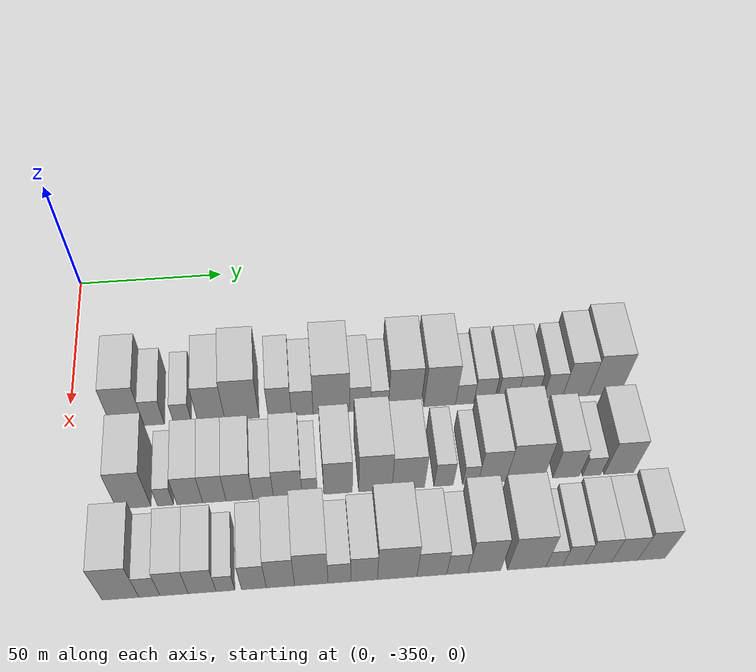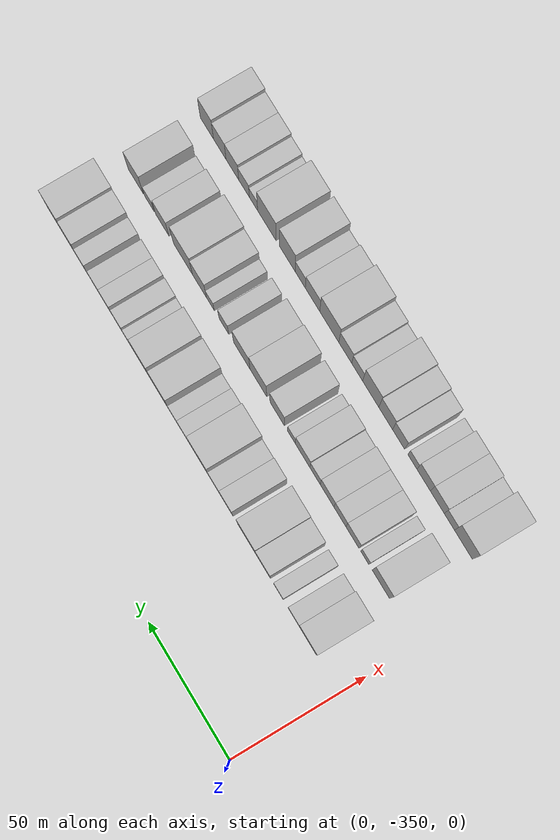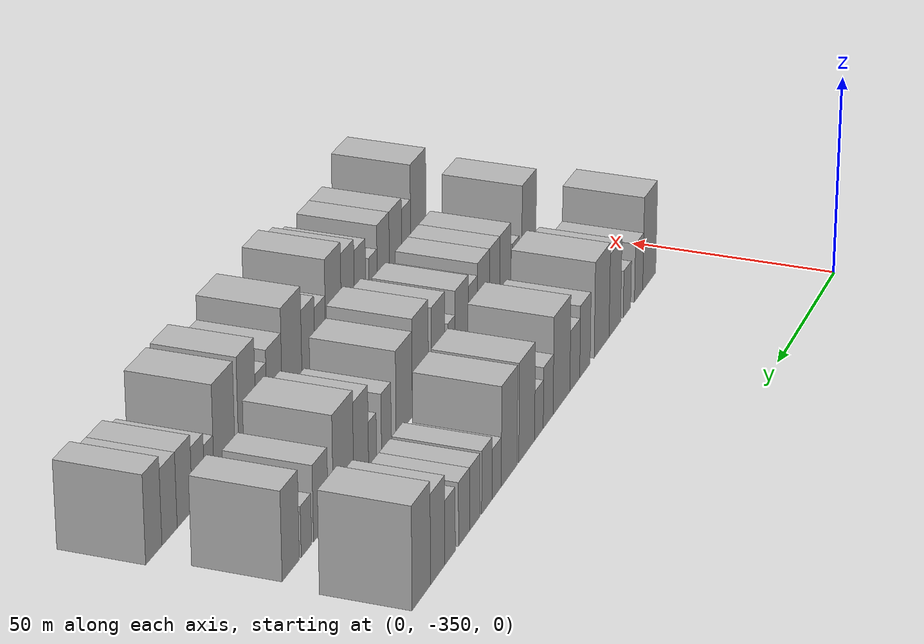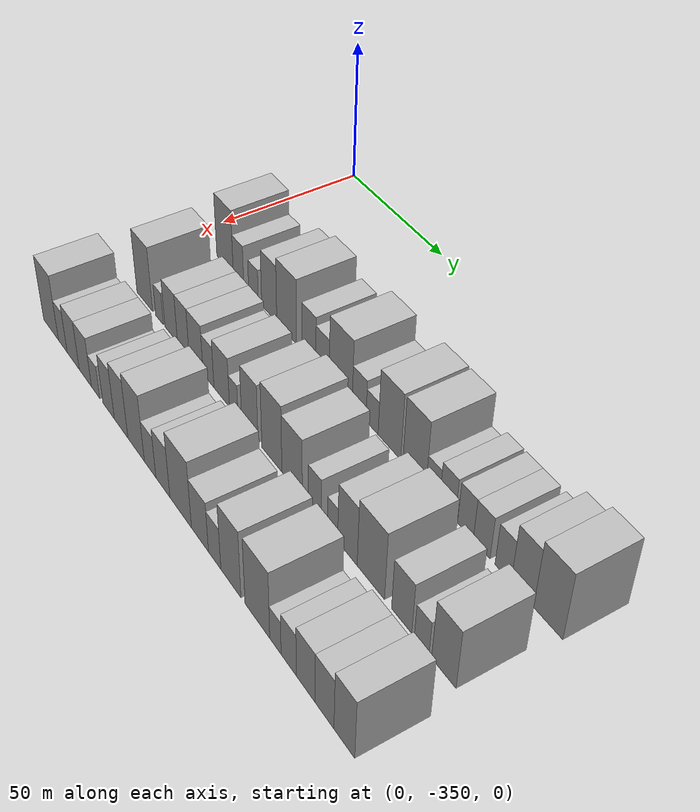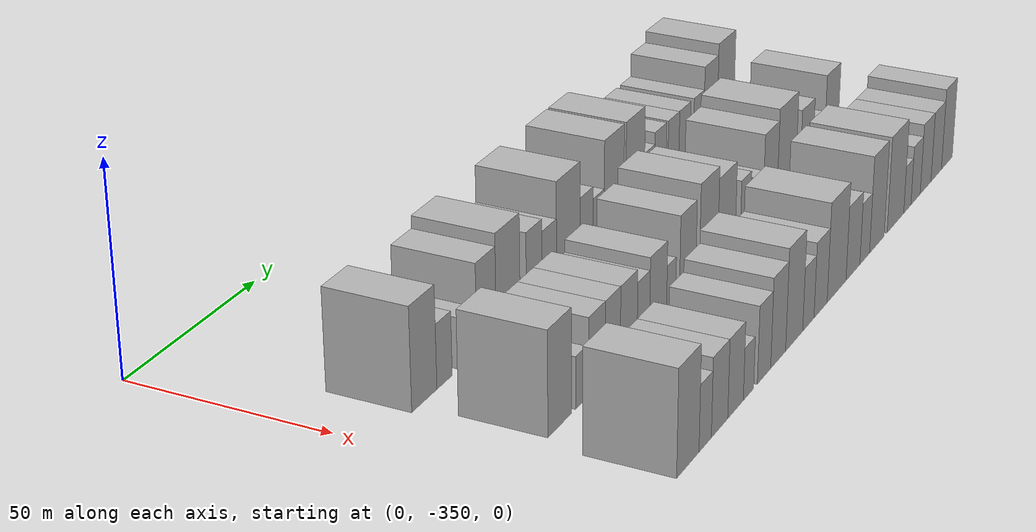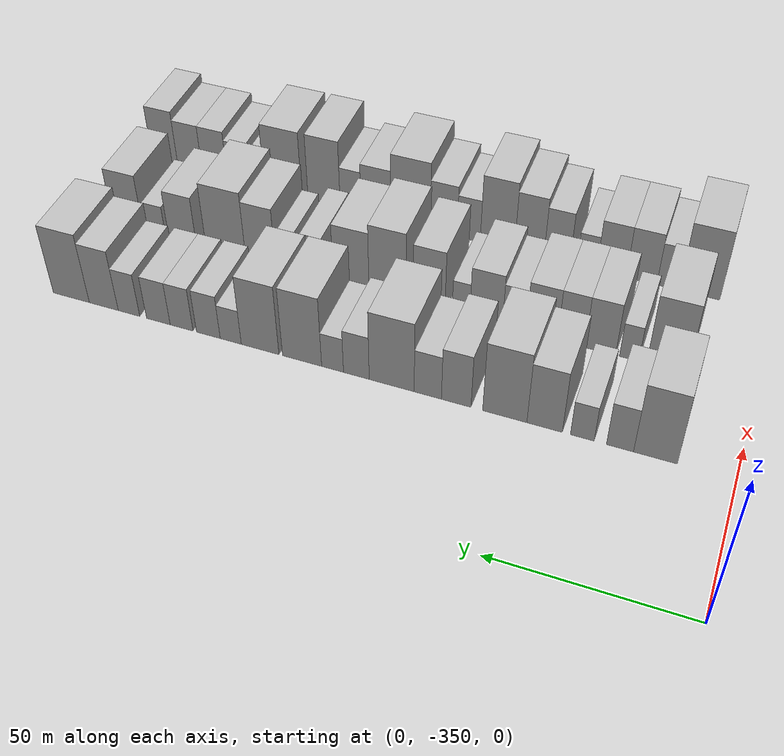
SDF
<sdf version="1.6">
 <world name="default">
  <model name="building_1">
   <static>1</static>
   <pose>50.0000 -330.7542 0 0.000000 0.000000 0.000000</pose>
   <link name="link">
    <pose>0 0 12.00 0 0 0</pose>
    <collision name="collision"><geometry><box><size>20.0000 10.4916 24.0000</size></box></geometry></collision>
    <visual name="visual">
     <cast_shadows>0</cast_shadows>
     <geometry><box><size>20.0000 10.4916 24.0000</size></box></geometry>
     <material>
      <script>
       <uri>model://HANNAS_wall/materials/scripts</uri>
       <uri>model://HANNAS_wall/materials/textures</uri>
       <name>vrc/HANNAS_wall</name>
      </script>
     </material>
    </visual>
   </link>
  </model>
  <model name="building_2">
   <static>1</static>
   <pose>50.0000 -322.2304 0 0.000000 0.000000 0.000000</pose>
   <link name="link">
    <pose>0 0 7.50 0 0 0</pose>
    <collision name="collision"><geometry><box><size>20.0000 6.5560 15.0000</size></box></geometry></collision>
    <visual name="visual">
     <cast_shadows>0</cast_shadows>
     <geometry><box><size>20.0000 6.5560 15.0000</size></box></geometry>
     <material>
      <script>
       <uri>model://HANNAS_wall/materials/scripts</uri>
       <uri>model://HANNAS_wall/materials/textures</uri>
       <name>vrc/HANNAS_wall</name>
      </script>
     </material>
    </visual>
   </link>
  </model>
  <model name="building_3">
   <static>1</static>
   <pose>50.0000 -313.0369 0 0.000000 0.000000 0.000000</pose>
   <link name="link">
    <pose>0 0 6.00 0 0 0</pose>
    <collision name="collision"><geometry><box><size>20.0000 5.8309 12.0000</size></box></geometry></collision>
    <visual name="visual">
     <cast_shadows>0</cast_shadows>
     <geometry><box><size>20.0000 5.8309 12.0000</size></box></geometry>
     <material>
      <script>
       <uri>model://HANNAS_wall/materials/scripts</uri>
       <uri>model://HANNAS_wall/materials/textures</uri>
       <name>vrc/HANNAS_wall</name>
      </script>
     </material>
    </visual>
   </link>
  </model>
  <model name="building_4">
   <static>1</static>
   <pose>50.0000 -303.6895 0 0.000000 0.000000 0.000000</pose>
   <link name="link">
    <pose>0 0 10.50 0 0 0</pose>
    <collision name="collision"><geometry><box><size>20.0000 8.8640 21.0000</size></box></geometry></collision>
    <visual name="visual">
     <cast_shadows>0</cast_shadows>
     <geometry><box><size>20.0000 8.8640 21.0000</size></box></geometry>
     <material>
      <script>
       <uri>model://HANNAS_wall/materials/scripts</uri>
       <uri>model://HANNAS_wall/materials/textures</uri>
       <name>vrc/HANNAS_wall</name>
      </script>
     </material>
    </visual>
   </link>
  </model>
  <model name="building_5">
   <static>1</static>
   <pose>50.0000 -293.6580 0 0.000000 0.000000 0.000000</pose>
   <link name="link">
    <pose>0 0 12.00 0 0 0</pose>
    <collision name="collision"><geometry><box><size>20.0000 11.1990 24.0000</size></box></geometry></collision>
    <visual name="visual">
     <cast_shadows>0</cast_shadows>
     <geometry><box><size>20.0000 11.1990 24.0000</size></box></geometry>
     <material>
      <script>
       <uri>model://HANNAS_wall/materials/scripts</uri>
       <uri>model://HANNAS_wall/materials/textures</uri>
       <name>vrc/HANNAS_wall</name>
      </script>
     </material>
    </visual>
   </link>
  </model>
  <model name="building_6">
   <static>1</static>
   <pose>50.0000 -281.2292 0 0.000000 0.000000 0.000000</pose>
   <link name="link">
    <pose>0 0 9.00 0 0 0</pose>
    <collision name="collision"><geometry><box><size>20.0000 7.6587 18.0000</size></box></geometry></collision>
    <visual name="visual">
     <cast_shadows>0</cast_shadows>
     <geometry><box><size>20.0000 7.6587 18.0000</size></box></geometry>
     <material>
      <script>
       <uri>model://HANNAS_wall/materials/scripts</uri>
       <uri>model://HANNAS_wall/materials/textures</uri>
       <name>vrc/HANNAS_wall</name>
      </script>
     </material>
    </visual>
   </link>
  </model>
  <model name="building_7">
   <static>1</static>
   <pose>50.0000 -273.8383 0 0.000000 0.000000 0.000000</pose>
   <link name="link">
    <pose>0 0 7.50 0 0 0</pose>
    <collision name="collision"><geometry><box><size>20.0000 7.1231 15.0000</size></box></geometry></collision>
    <visual name="visual">
     <cast_shadows>0</cast_shadows>
     <geometry><box><size>20.0000 7.1231 15.0000</size></box></geometry>
     <material>
      <script>
       <uri>model://HANNAS_wall/materials/scripts</uri>
       <uri>model://HANNAS_wall/materials/textures</uri>
       <name>vrc/HANNAS_wall</name>
      </script>
     </material>
    </visual>
   </link>
  </model>
  <model name="building_8">
   <static>1</static>
   <pose>50.0000 -264.3221 0 0.000000 0.000000 0.000000</pose>
   <link name="link">
    <pose>0 0 12.00 0 0 0</pose>
    <collision name="collision"><geometry><box><size>20.0000 11.9093 24.0000</size></box></geometry></collision>
    <visual name="visual">
     <cast_shadows>0</cast_shadows>
     <geometry><box><size>20.0000 11.9093 24.0000</size></box></geometry>
     <material>
      <script>
       <uri>model://HANNAS_wall/materials/scripts</uri>
       <uri>model://HANNAS_wall/materials/textures</uri>
       <name>vrc/HANNAS_wall</name>
      </script>
     </material>
    </visual>
   </link>
  </model>
  <model name="building_9">
   <static>1</static>
   <pose>50.0000 -254.9074 0 0.000000 0.000000 0.000000</pose>
   <link name="link">
    <pose>0 0 7.50 0 0 0</pose>
    <collision name="collision"><geometry><box><size>20.0000 6.9201 15.0000</size></box></geometry></collision>
    <visual name="visual">
     <cast_shadows>0</cast_shadows>
     <geometry><box><size>20.0000 6.9201 15.0000</size></box></geometry>
     <material>
      <script>
       <uri>model://HANNAS_wall/materials/scripts</uri>
       <uri>model://HANNAS_wall/materials/textures</uri>
       <name>vrc/HANNAS_wall</name>
      </script>
     </material>
    </visual>
   </link>
  </model>
  <model name="building_10">
   <static>1</static>
   <pose>50.0000 -248.4797 0 0.000000 0.000000 0.000000</pose>
   <link name="link">
    <pose>0 0 6.00 0 0 0</pose>
    <collision name="collision"><geometry><box><size>20.0000 5.9353 12.0000</size></box></geometry></collision>
    <visual name="visual">
     <cast_shadows>0</cast_shadows>
     <geometry><box><size>20.0000 5.9353 12.0000</size></box></geometry>
     <material>
      <script>
       <uri>model://HANNAS_wall/materials/scripts</uri>
       <uri>model://HANNAS_wall/materials/textures</uri>
       <name>vrc/HANNAS_wall</name>
      </script>
     </material>
    </visual>
   </link>
  </model>
  <model name="building_11">
   <static>1</static>
   <pose>50.0000 -240.1298 0 0.000000 0.000000 0.000000</pose>
   <link name="link">
    <pose>0 0 12.00 0 0 0</pose>
    <collision name="collision"><geometry><box><size>20.0000 10.7646 24.0000</size></box></geometry></collision>
    <visual name="visual">
     <cast_shadows>0</cast_shadows>
     <geometry><box><size>20.0000 10.7646 24.0000</size></box></geometry>
     <material>
      <script>
       <uri>model://HANNAS_wall/materials/scripts</uri>
       <uri>model://HANNAS_wall/materials/textures</uri>
       <name>vrc/HANNAS_wall</name>
      </script>
     </material>
    </visual>
   </link>
  </model>
  <model name="building_12">
   <static>1</static>
   <pose>50.0000 -228.4766 0 0.000000 0.000000 0.000000</pose>
   <link name="link">
    <pose>0 0 12.00 0 0 0</pose>
    <collision name="collision"><geometry><box><size>20.0000 10.5418 24.0000</size></box></geometry></collision>
    <visual name="visual">
     <cast_shadows>0</cast_shadows>
     <geometry><box><size>20.0000 10.5418 24.0000</size></box></geometry>
     <material>
      <script>
       <uri>model://HANNAS_wall/materials/scripts</uri>
       <uri>model://HANNAS_wall/materials/textures</uri>
       <name>vrc/HANNAS_wall</name>
      </script>
     </material>
    </visual>
   </link>
  </model>
  <model name="building_13">
   <static>1</static>
   <pose>50.0000 -220.2159 0 0.000000 0.000000 0.000000</pose>
   <link name="link">
    <pose>0 0 6.00 0 0 0</pose>
    <collision name="collision"><geometry><box><size>20.0000 5.9795 12.0000</size></box></geometry></collision>
    <visual name="visual">
     <cast_shadows>0</cast_shadows>
     <geometry><box><size>20.0000 5.9795 12.0000</size></box></geometry>
     <material>
      <script>
       <uri>model://HANNAS_wall/materials/scripts</uri>
       <uri>model://HANNAS_wall/materials/textures</uri>
       <name>vrc/HANNAS_wall</name>
      </script>
     </material>
    </visual>
   </link>
  </model>
  <model name="building_14">
   <static>1</static>
   <pose>50.0000 -213.8273 0 0.000000 0.000000 0.000000</pose>
   <link name="link">
    <pose>0 0 7.50 0 0 0</pose>
    <collision name="collision"><geometry><box><size>20.0000 6.7977 15.0000</size></box></geometry></collision>
    <visual name="visual">
     <cast_shadows>0</cast_shadows>
     <geometry><box><size>20.0000 6.7977 15.0000</size></box></geometry>
     <material>
      <script>
       <uri>model://HANNAS_wall/materials/scripts</uri>
       <uri>model://HANNAS_wall/materials/textures</uri>
       <name>vrc/HANNAS_wall</name>
      </script>
     </material>
    </visual>
   </link>
  </model>
  <model name="building_15">
   <static>1</static>
   <pose>50.0000 -206.1261 0 0.000000 0.000000 0.000000</pose>
   <link name="link">
    <pose>0 0 7.50 0 0 0</pose>
    <collision name="collision"><geometry><box><size>20.0000 6.6046 15.0000</size></box></geometry></collision>
    <visual name="visual">
     <cast_shadows>0</cast_shadows>
     <geometry><box><size>20.0000 6.6046 15.0000</size></box></geometry>
     <material>
      <script>
       <uri>model://HANNAS_wall/materials/scripts</uri>
       <uri>model://HANNAS_wall/materials/textures</uri>
       <name>vrc/HANNAS_wall</name>
      </script>
     </material>
    </visual>
   </link>
  </model>
  <model name="building_16">
   <static>1</static>
   <pose>50.0000 -199.3701 0 0.000000 0.000000 0.000000</pose>
   <link name="link">
    <pose>0 0 7.50 0 0 0</pose>
    <collision name="collision"><geometry><box><size>20.0000 6.9075 15.0000</size></box></geometry></collision>
    <visual name="visual">
     <cast_shadows>0</cast_shadows>
     <geometry><box><size>20.0000 6.9075 15.0000</size></box></geometry>
     <material>
      <script>
       <uri>model://HANNAS_wall/materials/scripts</uri>
       <uri>model://HANNAS_wall/materials/textures</uri>
       <name>vrc/HANNAS_wall</name>
      </script>
     </material>
    </visual>
   </link>
  </model>
  <model name="building_17">
   <static>1</static>
   <pose>50.0000 -190.7344 0 0.000000 0.000000 0.000000</pose>
   <link name="link">
    <pose>0 0 7.50 0 0 0</pose>
    <collision name="collision"><geometry><box><size>20.0000 6.3638 15.0000</size></box></geometry></collision>
    <visual name="visual">
     <cast_shadows>0</cast_shadows>
     <geometry><box><size>20.0000 6.3638 15.0000</size></box></geometry>
     <material>
      <script>
       <uri>model://HANNAS_wall/materials/scripts</uri>
       <uri>model://HANNAS_wall/materials/textures</uri>
       <name>vrc/HANNAS_wall</name>
      </script>
     </material>
    </visual>
   </link>
  </model>
  <model name="building_18">
   <static>1</static>
   <pose>50.0000 -183.2185 0 0.000000 0.000000 0.000000</pose>
   <link name="link">
    <pose>0 0 10.50 0 0 0</pose>
    <collision name="collision"><geometry><box><size>20.0000 8.6681 21.0000</size></box></geometry></collision>
    <visual name="visual">
     <cast_shadows>0</cast_shadows>
     <geometry><box><size>20.0000 8.6681 21.0000</size></box></geometry>
     <material>
      <script>
       <uri>model://HANNAS_wall/materials/scripts</uri>
       <uri>model://HANNAS_wall/materials/textures</uri>
       <name>vrc/HANNAS_wall</name>
      </script>
     </material>
    </visual>
   </link>
  </model>
  <model name="building_19">
   <static>1</static>
   <pose>50.0000 -173.4385 0 0.000000 0.000000 0.000000</pose>
   <link name="link">
    <pose>0 0 12.00 0 0 0</pose>
    <collision name="collision"><geometry><box><size>20.0000 10.8919 24.0000</size></box></geometry></collision>
    <visual name="visual">
     <cast_shadows>0</cast_shadows>
     <geometry><box><size>20.0000 10.8919 24.0000</size></box></geometry>
     <material>
      <script>
       <uri>model://HANNAS_wall/materials/scripts</uri>
       <uri>model://HANNAS_wall/materials/textures</uri>
       <name>vrc/HANNAS_wall</name>
      </script>
     </material>
    </visual>
   </link>
  </model>
  <model name="building_77">
   <static>1</static>
   <pose>79.0000 -327.7335 0 0.000000 0.000000 0.000000</pose>
   <link name="link">
    <pose>0 0 12.00 0 0 0</pose>
    <collision name="collision"><geometry><box><size>20.0000 10.5329 24.0000</size></box></geometry></collision>
    <visual name="visual">
     <cast_shadows>0</cast_shadows>
     <geometry><box><size>20.0000 10.5329 24.0000</size></box></geometry>
     <material>
      <script>
       <uri>model://HANNAS_wall/materials/scripts</uri>
       <uri>model://HANNAS_wall/materials/textures</uri>
       <name>vrc/HANNAS_wall</name>
      </script>
     </material>
    </visual>
   </link>
  </model>
  <model name="building_78">
   <static>1</static>
   <pose>79.0000 -317.9651 0 0.000000 0.000000 0.000000</pose>
   <link name="link">
    <pose>0 0 6.00 0 0 0</pose>
    <collision name="collision"><geometry><box><size>20.0000 5.0040 12.0000</size></box></geometry></collision>
    <visual name="visual">
     <cast_shadows>0</cast_shadows>
     <geometry><box><size>20.0000 5.0040 12.0000</size></box></geometry>
     <material>
      <script>
       <uri>model://HANNAS_wall/materials/scripts</uri>
       <uri>model://HANNAS_wall/materials/textures</uri>
       <name>vrc/HANNAS_wall</name>
      </script>
     </material>
    </visual>
   </link>
  </model>
  <model name="building_79">
   <static>1</static>
   <pose>79.0000 -310.4684 0 0.000000 0.000000 0.000000</pose>
   <link name="link">
    <pose>0 0 9.00 0 0 0</pose>
    <collision name="collision"><geometry><box><size>20.0000 7.9895 18.0000</size></box></geometry></collision>
    <visual name="visual">
     <cast_shadows>0</cast_shadows>
     <geometry><box><size>20.0000 7.9895 18.0000</size></box></geometry>
     <material>
      <script>
       <uri>model://HANNAS_wall/materials/scripts</uri>
       <uri>model://HANNAS_wall/materials/textures</uri>
       <name>vrc/HANNAS_wall</name>
      </script>
     </material>
    </visual>
   </link>
  </model>
  <model name="building_80">
   <static>1</static>
   <pose>79.0000 -302.8256 0 0.000000 0.000000 0.000000</pose>
   <link name="link">
    <pose>0 0 9.00 0 0 0</pose>
    <collision name="collision"><geometry><box><size>20.0000 7.2963 18.0000</size></box></geometry></collision>
    <visual name="visual">
     <cast_shadows>0</cast_shadows>
     <geometry><box><size>20.0000 7.2963 18.0000</size></box></geometry>
     <material>
      <script>
       <uri>model://HANNAS_wall/materials/scripts</uri>
       <uri>model://HANNAS_wall/materials/textures</uri>
       <name>vrc/HANNAS_wall</name>
      </script>
     </material>
    </visual>
   </link>
  </model>
  <model name="building_81">
   <static>1</static>
   <pose>79.0000 -294.9675 0 0.000000 0.000000 0.000000</pose>
   <link name="link">
    <pose>0 0 9.00 0 0 0</pose>
    <collision name="collision"><geometry><box><size>20.0000 8.4199 18.0000</size></box></geometry></collision>
    <visual name="visual">
     <cast_shadows>0</cast_shadows>
     <geometry><box><size>20.0000 8.4199 18.0000</size></box></geometry>
     <material>
      <script>
       <uri>model://HANNAS_wall/materials/scripts</uri>
       <uri>model://HANNAS_wall/materials/textures</uri>
       <name>vrc/HANNAS_wall</name>
      </script>
     </material>
    </visual>
   </link>
  </model>
  <model name="building_82">
   <static>1</static>
   <pose>79.0000 -287.5718 0 0.000000 0.000000 0.000000</pose>
   <link name="link">
    <pose>0 0 7.50 0 0 0</pose>
    <collision name="collision"><geometry><box><size>20.0000 6.3714 15.0000</size></box></geometry></collision>
    <visual name="visual">
     <cast_shadows>0</cast_shadows>
     <geometry><box><size>20.0000 6.3714 15.0000</size></box></geometry>
     <material>
      <script>
       <uri>model://HANNAS_wall/materials/scripts</uri>
       <uri>model://HANNAS_wall/materials/textures</uri>
       <name>vrc/HANNAS_wall</name>
      </script>
     </material>
    </visual>
   </link>
  </model>
  <model name="building_83">
   <static>1</static>
   <pose>79.0000 -279.9257 0 0.000000 0.000000 0.000000</pose>
   <link name="link">
    <pose>0 0 9.00 0 0 0</pose>
    <collision name="collision"><geometry><box><size>20.0000 8.9208 18.0000</size></box></geometry></collision>
    <visual name="visual">
     <cast_shadows>0</cast_shadows>
     <geometry><box><size>20.0000 8.9208 18.0000</size></box></geometry>
     <material>
      <script>
       <uri>model://HANNAS_wall/materials/scripts</uri>
       <uri>model://HANNAS_wall/materials/textures</uri>
       <name>vrc/HANNAS_wall</name>
      </script>
     </material>
    </visual>
   </link>
  </model>
  <model name="building_84">
   <static>1</static>
   <pose>79.0000 -273.0476 0 0.000000 0.000000 0.000000</pose>
   <link name="link">
    <pose>0 0 6.00 0 0 0</pose>
    <collision name="collision"><geometry><box><size>20.0000 4.8353 12.0000</size></box></geometry></collision>
    <visual name="visual">
     <cast_shadows>0</cast_shadows>
     <geometry><box><size>20.0000 4.8353 12.0000</size></box></geometry>
     <material>
      <script>
       <uri>model://HANNAS_wall/materials/scripts</uri>
       <uri>model://HANNAS_wall/materials/textures</uri>
       <name>vrc/HANNAS_wall</name>
      </script>
     </material>
    </visual>
   </link>
  </model>
  <model name="building_85">
   <static>1</static>
   <pose>79.0000 -264.1736 0 0.000000 0.000000 0.000000</pose>
   <link name="link">
    <pose>0 0 10.50 0 0 0</pose>
    <collision name="collision"><geometry><box><size>20.0000 8.9127 21.0000</size></box></geometry></collision>
    <visual name="visual">
     <cast_shadows>0</cast_shadows>
     <geometry><box><size>20.0000 8.9127 21.0000</size></box></geometry>
     <material>
      <script>
       <uri>model://HANNAS_wall/materials/scripts</uri>
       <uri>model://HANNAS_wall/materials/textures</uri>
       <name>vrc/HANNAS_wall</name>
      </script>
     </material>
    </visual>
   </link>
  </model>
  <model name="building_86">
   <static>1</static>
   <pose>79.0000 -252.4840 0 0.000000 0.000000 0.000000</pose>
   <link name="link">
    <pose>0 0 12.00 0 0 0</pose>
    <collision name="collision"><geometry><box><size>20.0000 10.4665 24.0000</size></box></geometry></collision>
    <visual name="visual">
     <cast_shadows>0</cast_shadows>
     <geometry><box><size>20.0000 10.4665 24.0000</size></box></geometry>
     <material>
      <script>
       <uri>model://HANNAS_wall/materials/scripts</uri>
       <uri>model://HANNAS_wall/materials/textures</uri>
       <name>vrc/HANNAS_wall</name>
      </script>
     </material>
    </visual>
   </link>
  </model>
  <model name="building_87">
   <static>1</static>
   <pose>79.0000 -242.1128 0 0.000000 0.000000 0.000000</pose>
   <link name="link">
    <pose>0 0 10.50 0 0 0</pose>
    <collision name="collision"><geometry><box><size>20.0000 10.2759 21.0000</size></box></geometry></collision>
    <visual name="visual">
     <cast_shadows>0</cast_shadows>
     <geometry><box><size>20.0000 10.2759 21.0000</size></box></geometry>
     <material>
      <script>
       <uri>model://HANNAS_wall/materials/scripts</uri>
       <uri>model://HANNAS_wall/materials/textures</uri>
       <name>vrc/HANNAS_wall</name>
      </script>
     </material>
    </visual>
   </link>
  </model>
  <model name="building_88">
   <static>1</static>
   <pose>79.0000 -230.9351 0 0.000000 0.000000 0.000000</pose>
   <link name="link">
    <pose>0 0 7.50 0 0 0</pose>
    <collision name="collision"><geometry><box><size>20.0000 6.0795 15.0000</size></box></geometry></collision>
    <visual name="visual">
     <cast_shadows>0</cast_shadows>
     <geometry><box><size>20.0000 6.0795 15.0000</size></box></geometry>
     <material>
      <script>
       <uri>model://HANNAS_wall/materials/scripts</uri>
       <uri>model://HANNAS_wall/materials/textures</uri>
       <name>vrc/HANNAS_wall</name>
      </script>
     </material>
    </visual>
   </link>
  </model>
  <model name="building_89">
   <static>1</static>
   <pose>79.0000 -222.4726 0 0.000000 0.000000 0.000000</pose>
   <link name="link">
    <pose>0 0 6.00 0 0 0</pose>
    <collision name="collision"><geometry><box><size>20.0000 4.8457 12.0000</size></box></geometry></collision>
    <visual name="visual">
     <cast_shadows>0</cast_shadows>
     <geometry><box><size>20.0000 4.8457 12.0000</size></box></geometry>
     <material>
      <script>
       <uri>model://HANNAS_wall/materials/scripts</uri>
       <uri>model://HANNAS_wall/materials/textures</uri>
       <name>vrc/HANNAS_wall</name>
      </script>
     </material>
    </visual>
   </link>
  </model>
  <model name="building_90">
   <static>1</static>
   <pose>79.0000 -215.5887 0 0.000000 0.000000 0.000000</pose>
   <link name="link">
    <pose>0 0 10.50 0 0 0</pose>
    <collision name="collision"><geometry><box><size>20.0000 8.9220 21.0000</size></box></geometry></collision>
    <visual name="visual">
     <cast_shadows>0</cast_shadows>
     <geometry><box><size>20.0000 8.9220 21.0000</size></box></geometry>
     <material>
      <script>
       <uri>model://HANNAS_wall/materials/scripts</uri>
       <uri>model://HANNAS_wall/materials/textures</uri>
       <name>vrc/HANNAS_wall</name>
      </script>
     </material>
    </visual>
   </link>
  </model>
  <model name="building_91">
   <static>1</static>
   <pose>79.0000 -205.1289 0 0.000000 0.000000 0.000000</pose>
   <link name="link">
    <pose>0 0 12.00 0 0 0</pose>
    <collision name="collision"><geometry><box><size>20.0000 11.9976 24.0000</size></box></geometry></collision>
    <visual name="visual">
     <cast_shadows>0</cast_shadows>
     <geometry><box><size>20.0000 11.9976 24.0000</size></box></geometry>
     <material>
      <script>
       <uri>model://HANNAS_wall/materials/scripts</uri>
       <uri>model://HANNAS_wall/materials/textures</uri>
       <name>vrc/HANNAS_wall</name>
      </script>
     </material>
    </visual>
   </link>
  </model>
  <model name="building_92">
   <static>1</static>
   <pose>79.0000 -191.9037 0 0.000000 0.000000 0.000000</pose>
   <link name="link">
    <pose>0 0 9.00 0 0 0</pose>
    <collision name="collision"><geometry><box><size>20.0000 8.4530 18.0000</size></box></geometry></collision>
    <visual name="visual">
     <cast_shadows>0</cast_shadows>
     <geometry><box><size>20.0000 8.4530 18.0000</size></box></geometry>
     <material>
      <script>
       <uri>model://HANNAS_wall/materials/scripts</uri>
       <uri>model://HANNAS_wall/materials/textures</uri>
       <name>vrc/HANNAS_wall</name>
      </script>
     </material>
    </visual>
   </link>
  </model>
  <model name="building_93">
   <static>1</static>
   <pose>79.0000 -183.7079 0 0.000000 0.000000 0.000000</pose>
   <link name="link">
    <pose>0 0 6.00 0 0 0</pose>
    <collision name="collision"><geometry><box><size>20.0000 5.9385 12.0000</size></box></geometry></collision>
    <visual name="visual">
     <cast_shadows>0</cast_shadows>
     <geometry><box><size>20.0000 5.9385 12.0000</size></box></geometry>
     <material>
      <script>
       <uri>model://HANNAS_wall/materials/scripts</uri>
       <uri>model://HANNAS_wall/materials/textures</uri>
       <name>vrc/HANNAS_wall</name>
      </script>
     </material>
    </visual>
   </link>
  </model>
  <model name="building_94">
   <static>1</static>
   <pose>79.0000 -174.9735 0 0.000000 0.000000 0.000000</pose>
   <link name="link">
    <pose>0 0 10.50 0 0 0</pose>
    <collision name="collision"><geometry><box><size>20.0000 9.5304 21.0000</size></box></geometry></collision>
    <visual name="visual">
     <cast_shadows>0</cast_shadows>
     <geometry><box><size>20.0000 9.5304 21.0000</size></box></geometry>
     <material>
      <script>
       <uri>model://HANNAS_wall/materials/scripts</uri>
       <uri>model://HANNAS_wall/materials/textures</uri>
       <name>vrc/HANNAS_wall</name>
      </script>
     </material>
    </visual>
   </link>
  </model>
  <model name="building_148">
   <static>1</static>
   <pose>108.0000 -330.6023 0 0.000000 0.000000 0.000000</pose>
   <link name="link">
    <pose>0 0 12.00 0 0 0</pose>
    <collision name="collision"><geometry><box><size>20.0000 10.7953 24.0000</size></box></geometry></collision>
    <visual name="visual">
     <cast_shadows>0</cast_shadows>
     <geometry><box><size>20.0000 10.7953 24.0000</size></box></geometry>
     <material>
      <script>
       <uri>model://HANNAS_wall/materials/scripts</uri>
       <uri>model://HANNAS_wall/materials/textures</uri>
       <name>vrc/HANNAS_wall</name>
      </script>
     </material>
    </visual>
   </link>
  </model>
  <model name="building_149">
   <static>1</static>
   <pose>108.0000 -322.1263 0 0.000000 0.000000 0.000000</pose>
   <link name="link">
    <pose>0 0 7.50 0 0 0</pose>
    <collision name="collision"><geometry><box><size>20.0000 6.1567 15.0000</size></box></geometry></collision>
    <visual name="visual">
     <cast_shadows>0</cast_shadows>
     <geometry><box><size>20.0000 6.1567 15.0000</size></box></geometry>
     <material>
      <script>
       <uri>model://HANNAS_wall/materials/scripts</uri>
       <uri>model://HANNAS_wall/materials/textures</uri>
       <name>vrc/HANNAS_wall</name>
      </script>
     </material>
    </visual>
   </link>
  </model>
  <model name="building_150">
   <static>1</static>
   <pose>108.0000 -314.8632 0 0.000000 0.000000 0.000000</pose>
   <link name="link">
    <pose>0 0 9.00 0 0 0</pose>
    <collision name="collision"><geometry><box><size>20.0000 8.3695 18.0000</size></box></geometry></collision>
    <visual name="visual">
     <cast_shadows>0</cast_shadows>
     <geometry><box><size>20.0000 8.3695 18.0000</size></box></geometry>
     <material>
      <script>
       <uri>model://HANNAS_wall/materials/scripts</uri>
       <uri>model://HANNAS_wall/materials/textures</uri>
       <name>vrc/HANNAS_wall</name>
      </script>
     </material>
    </visual>
   </link>
  </model>
  <model name="building_151">
   <static>1</static>
   <pose>108.0000 -306.5923 0 0.000000 0.000000 0.000000</pose>
   <link name="link">
    <pose>0 0 9.00 0 0 0</pose>
    <collision name="collision"><geometry><box><size>20.0000 8.1722 18.0000</size></box></geometry></collision>
    <visual name="visual">
     <cast_shadows>0</cast_shadows>
     <geometry><box><size>20.0000 8.1722 18.0000</size></box></geometry>
     <material>
      <script>
       <uri>model://HANNAS_wall/materials/scripts</uri>
       <uri>model://HANNAS_wall/materials/textures</uri>
       <name>vrc/HANNAS_wall</name>
      </script>
     </material>
    </visual>
   </link>
  </model>
  <model name="building_152">
   <static>1</static>
   <pose>108.0000 -299.7460 0 0.000000 0.000000 0.000000</pose>
   <link name="link">
    <pose>0 0 6.00 0 0 0</pose>
    <collision name="collision"><geometry><box><size>20.0000 5.5204 12.0000</size></box></geometry></collision>
    <visual name="visual">
     <cast_shadows>0</cast_shadows>
     <geometry><box><size>20.0000 5.5204 12.0000</size></box></geometry>
     <material>
      <script>
       <uri>model://HANNAS_wall/materials/scripts</uri>
       <uri>model://HANNAS_wall/materials/textures</uri>
       <name>vrc/HANNAS_wall</name>
      </script>
     </material>
    </visual>
   </link>
  </model>
  <model name="building_153">
   <static>1</static>
   <pose>108.0000 -291.3064 0 0.000000 0.000000 0.000000</pose>
   <link name="link">
    <pose>0 0 9.00 0 0 0</pose>
    <collision name="collision"><geometry><box><size>20.0000 7.3590 18.0000</size></box></geometry></collision>
    <visual name="visual">
     <cast_shadows>0</cast_shadows>
     <geometry><box><size>20.0000 7.3590 18.0000</size></box></geometry>
     <material>
      <script>
       <uri>model://HANNAS_wall/materials/scripts</uri>
       <uri>model://HANNAS_wall/materials/textures</uri>
       <name>vrc/HANNAS_wall</name>
      </script>
     </material>
    </visual>
   </link>
  </model>
  <model name="building_154">
   <static>1</static>
   <pose>108.0000 -283.4145 0 0.000000 0.000000 0.000000</pose>
   <link name="link">
    <pose>0 0 10.50 0 0 0</pose>
    <collision name="collision"><geometry><box><size>20.0000 8.4247 21.0000</size></box></geometry></collision>
    <visual name="visual">
     <cast_shadows>0</cast_shadows>
     <geometry><box><size>20.0000 8.4247 21.0000</size></box></geometry>
     <material>
      <script>
       <uri>model://HANNAS_wall/materials/scripts</uri>
       <uri>model://HANNAS_wall/materials/textures</uri>
       <name>vrc/HANNAS_wall</name>
      </script>
     </material>
    </visual>
   </link>
  </model>
  <model name="building_155">
   <static>1</static>
   <pose>108.0000 -274.2490 0 0.000000 0.000000 0.000000</pose>
   <link name="link">
    <pose>0 0 12.00 0 0 0</pose>
    <collision name="collision"><geometry><box><size>20.0000 9.9064 24.0000</size></box></geometry></collision>
    <visual name="visual">
     <cast_shadows>0</cast_shadows>
     <geometry><box><size>20.0000 9.9064 24.0000</size></box></geometry>
     <material>
      <script>
       <uri>model://HANNAS_wall/materials/scripts</uri>
       <uri>model://HANNAS_wall/materials/textures</uri>
       <name>vrc/HANNAS_wall</name>
      </script>
     </material>
    </visual>
   </link>
  </model>
  <model name="building_156">
   <static>1</static>
   <pose>108.0000 -265.9204 0 0.000000 0.000000 0.000000</pose>
   <link name="link">
    <pose>0 0 7.50 0 0 0</pose>
    <collision name="collision"><geometry><box><size>20.0000 6.7509 15.0000</size></box></geometry></collision>
    <visual name="visual">
     <cast_shadows>0</cast_shadows>
     <geometry><box><size>20.0000 6.7509 15.0000</size></box></geometry>
     <material>
      <script>
       <uri>model://HANNAS_wall/materials/scripts</uri>
       <uri>model://HANNAS_wall/materials/textures</uri>
       <name>vrc/HANNAS_wall</name>
      </script>
     </material>
    </visual>
   </link>
  </model>
  <model name="building_157">
   <static>1</static>
   <pose>108.0000 -258.5558 0 0.000000 0.000000 0.000000</pose>
   <link name="link">
    <pose>0 0 9.00 0 0 0</pose>
    <collision name="collision"><geometry><box><size>20.0000 7.9782 18.0000</size></box></geometry></collision>
    <visual name="visual">
     <cast_shadows>0</cast_shadows>
     <geometry><box><size>20.0000 7.9782 18.0000</size></box></geometry>
     <material>
      <script>
       <uri>model://HANNAS_wall/materials/scripts</uri>
       <uri>model://HANNAS_wall/materials/textures</uri>
       <name>vrc/HANNAS_wall</name>
      </script>
     </material>
    </visual>
   </link>
  </model>
  <model name="building_158">
   <static>1</static>
   <pose>108.0000 -248.6374 0 0.000000 0.000000 0.000000</pose>
   <link name="link">
    <pose>0 0 12.00 0 0 0</pose>
    <collision name="collision"><geometry><box><size>20.0000 11.8586 24.0000</size></box></geometry></collision>
    <visual name="visual">
     <cast_shadows>0</cast_shadows>
     <geometry><box><size>20.0000 11.8586 24.0000</size></box></geometry>
     <material>
      <script>
       <uri>model://HANNAS_wall/materials/scripts</uri>
       <uri>model://HANNAS_wall/materials/textures</uri>
       <name>vrc/HANNAS_wall</name>
      </script>
     </material>
    </visual>
   </link>
  </model>
  <model name="building_159">
   <static>1</static>
   <pose>108.0000 -238.2218 0 0.000000 0.000000 0.000000</pose>
   <link name="link">
    <pose>0 0 9.00 0 0 0</pose>
    <collision name="collision"><geometry><box><size>20.0000 8.9726 18.0000</size></box></geometry></collision>
    <visual name="visual">
     <cast_shadows>0</cast_shadows>
     <geometry><box><size>20.0000 8.9726 18.0000</size></box></geometry>
     <material>
      <script>
       <uri>model://HANNAS_wall/materials/scripts</uri>
       <uri>model://HANNAS_wall/materials/textures</uri>
       <name>vrc/HANNAS_wall</name>
      </script>
     </material>
    </visual>
   </link>
  </model>
  <model name="building_160">
   <static>1</static>
   <pose>108.0000 -230.5594 0 0.000000 0.000000 0.000000</pose>
   <link name="link">
    <pose>0 0 7.50 0 0 0</pose>
    <collision name="collision"><geometry><box><size>20.0000 6.3523 15.0000</size></box></geometry></collision>
    <visual name="visual">
     <cast_shadows>0</cast_shadows>
     <geometry><box><size>20.0000 6.3523 15.0000</size></box></geometry>
     <material>
      <script>
       <uri>model://HANNAS_wall/materials/scripts</uri>
       <uri>model://HANNAS_wall/materials/textures</uri>
       <name>vrc/HANNAS_wall</name>
      </script>
     </material>
    </visual>
   </link>
  </model>
  <model name="building_161">
   <static>1</static>
   <pose>108.0000 -222.4048 0 0.000000 0.000000 0.000000</pose>
   <link name="link">
    <pose>0 0 12.00 0 0 0</pose>
    <collision name="collision"><geometry><box><size>20.0000 9.9569 24.0000</size></box></geometry></collision>
    <visual name="visual">
     <cast_shadows>0</cast_shadows>
     <geometry><box><size>20.0000 9.9569 24.0000</size></box></geometry>
     <material>
      <script>
       <uri>model://HANNAS_wall/materials/scripts</uri>
       <uri>model://HANNAS_wall/materials/textures</uri>
       <name>vrc/HANNAS_wall</name>
      </script>
     </material>
    </visual>
   </link>
  </model>
  <model name="building_162">
   <static>1</static>
   <pose>108.0000 -209.5897 0 0.000000 0.000000 0.000000</pose>
   <link name="link">
    <pose>0 0 12.00 0 0 0</pose>
    <collision name="collision"><geometry><box><size>20.0000 11.6733 24.0000</size></box></geometry></collision>
    <visual name="visual">
     <cast_shadows>0</cast_shadows>
     <geometry><box><size>20.0000 11.6733 24.0000</size></box></geometry>
     <material>
      <script>
       <uri>model://HANNAS_wall/materials/scripts</uri>
       <uri>model://HANNAS_wall/materials/textures</uri>
       <name>vrc/HANNAS_wall</name>
      </script>
     </material>
    </visual>
   </link>
  </model>
  <model name="building_163">
   <static>1</static>
   <pose>108.0000 -201.1613 0 0.000000 0.000000 0.000000</pose>
   <link name="link">
    <pose>0 0 6.00 0 0 0</pose>
    <collision name="collision"><geometry><box><size>20.0000 5.1834 12.0000</size></box></geometry></collision>
    <visual name="visual">
     <cast_shadows>0</cast_shadows>
     <geometry><box><size>20.0000 5.1834 12.0000</size></box></geometry>
     <material>
      <script>
       <uri>model://HANNAS_wall/materials/scripts</uri>
       <uri>model://HANNAS_wall/materials/textures</uri>
       <name>vrc/HANNAS_wall</name>
      </script>
     </material>
    </visual>
   </link>
  </model>
  <model name="building_164">
   <static>1</static>
   <pose>108.0000 -195.1907 0 0.000000 0.000000 0.000000</pose>
   <link name="link">
    <pose>0 0 7.50 0 0 0</pose>
    <collision name="collision"><geometry><box><size>20.0000 6.7578 15.0000</size></box></geometry></collision>
    <visual name="visual">
     <cast_shadows>0</cast_shadows>
     <geometry><box><size>20.0000 6.7578 15.0000</size></box></geometry>
     <material>
      <script>
       <uri>model://HANNAS_wall/materials/scripts</uri>
       <uri>model://HANNAS_wall/materials/textures</uri>
       <name>vrc/HANNAS_wall</name>
      </script>
     </material>
    </visual>
   </link>
  </model>
  <model name="building_165">
   <static>1</static>
   <pose>108.0000 -187.7732 0 0.000000 0.000000 0.000000</pose>
   <link name="link">
    <pose>0 0 9.00 0 0 0</pose>
    <collision name="collision"><geometry><box><size>20.0000 8.0772 18.0000</size></box></geometry></collision>
    <visual name="visual">
     <cast_shadows>0</cast_shadows>
     <geometry><box><size>20.0000 8.0772 18.0000</size></box></geometry>
     <material>
      <script>
       <uri>model://HANNAS_wall/materials/scripts</uri>
       <uri>model://HANNAS_wall/materials/textures</uri>
       <name>vrc/HANNAS_wall</name>
      </script>
     </material>
    </visual>
   </link>
  </model>
  <model name="building_166">
   <static>1</static>
   <pose>108.0000 -179.7486 0 0.000000 0.000000 0.000000</pose>
   <link name="link">
    <pose>0 0 9.00 0 0 0</pose>
    <collision name="collision"><geometry><box><size>20.0000 7.9721 18.0000</size></box></geometry></collision>
    <visual name="visual">
     <cast_shadows>0</cast_shadows>
     <geometry><box><size>20.0000 7.9721 18.0000</size></box></geometry>
     <material>
      <script>
       <uri>model://HANNAS_wall/materials/scripts</uri>
       <uri>model://HANNAS_wall/materials/textures</uri>
       <name>vrc/HANNAS_wall</name>
      </script>
     </material>
    </visual>
   </link>
  </model>
  <model name="building_167">
   <static>1</static>
   <pose>108.0000 -171.5546 0 0.000000 0.000000 0.000000</pose>
   <link name="link">
    <pose>0 0 10.50 0 0 0</pose>
    <collision name="collision"><geometry><box><size>20.0000 8.4159 21.0000</size></box></geometry></collision>
    <visual name="visual">
     <cast_shadows>0</cast_shadows>
     <geometry><box><size>20.0000 8.4159 21.0000</size></box></geometry>
     <material>
      <script>
       <uri>model://HANNAS_wall/materials/scripts</uri>
       <uri>model://HANNAS_wall/materials/textures</uri>
       <name>vrc/HANNAS_wall</name>
      </script>
     </material>
    </visual>
   </link>
  </model>
 </world>
</sdf>
